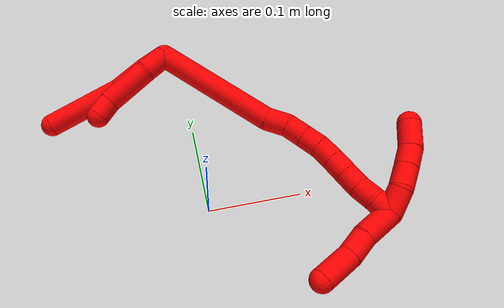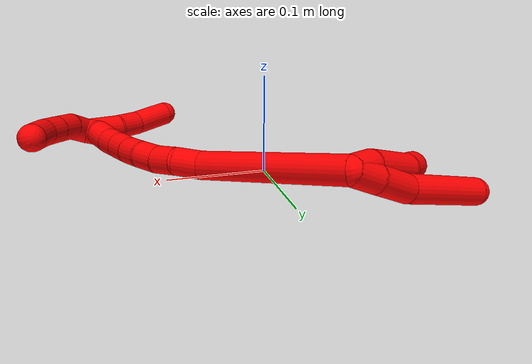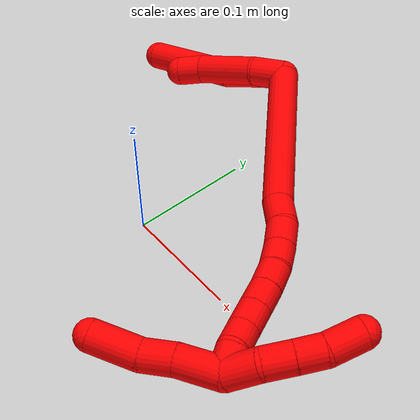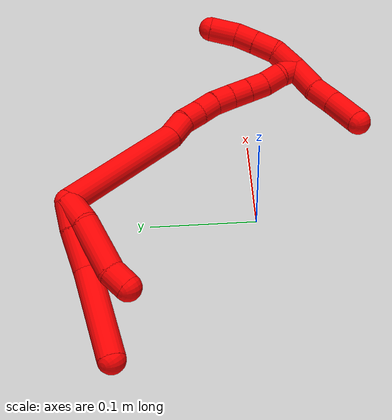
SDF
<sdf version="1.7">
 <world name="default">
  <model name="2">
   <static>0</static>
   <link name="2">
    <collision name="collision-cylinder-e_1_2_8">
     <pose>-0.007371 -0.009193 0.005925 0.998279 -0.59305 -0.330113</pose>
     <geometry><cylinder><radius>0.0125</radius><length>0.026378</length></cylinder></geometry>
     <surface>
      <friction><ode><mu>1.16</mu><mu2>1.16</mu2><slip1>0</slip1><slip2>0</slip2></ode></friction>
      <contact><ode><kp>1e+06</kp><kd>1</kd><max_vel>0</max_vel><min_depth>0.001</min_depth></ode></contact>
     </surface>
    </collision>
    <visual name="visual-cylinder-e_1_2_8">
     <pose>-0.007371 -0.009193 0.005925 0.998279 -0.59305 -0.330113</pose>
     <geometry><cylinder><radius>0.0125</radius><length>0.026378</length></cylinder></geometry>
     <material><ambient>1 0 0 1</ambient></material>
    </visual>
    <collision name="collision-cylinder-e_2_8_9">
     <pose>-0.025148 -0.033207 0.018988 1.12201 -0.56398 -0.360135</pose>
     <geometry><cylinder><radius>0.0125</radius><length>0.03893</length></cylinder></geometry>
     <surface>
      <friction><ode><mu>1.16</mu><mu2>1.16</mu2><slip1>0</slip1><slip2>0</slip2></ode></friction>
      <contact><ode><kp>1e+06</kp><kd>1</kd><max_vel>0</max_vel><min_depth>0.001</min_depth></ode></contact>
     </surface>
    </collision>
    <visual name="visual-cylinder-e_2_8_9">
     <pose>-0.025148 -0.033207 0.018988 1.12201 -0.56398 -0.360135</pose>
     <geometry><cylinder><radius>0.0125</radius><length>0.03893</length></cylinder></geometry>
     <material><ambient>1 0 0 1</ambient></material>
    </visual>
    <collision name="collision-cylinder-e_3_9_6">
     <pose>-0.0516 -0.080749 0.04769 0.988069 -0.388679 -0.211222</pose>
     <geometry><cylinder><radius>0.0125</radius><length>0.084692</length></cylinder></geometry>
     <surface>
      <friction><ode><mu>1.16</mu><mu2>1.16</mu2><slip1>0</slip1><slip2>0</slip2></ode></friction>
      <contact><ode><kp>1e+06</kp><kd>1</kd><max_vel>0</max_vel><min_depth>0.001</min_depth></ode></contact>
     </surface>
    </collision>
    <visual name="visual-cylinder-e_3_9_6">
     <pose>-0.0516 -0.080749 0.04769 0.988069 -0.388679 -0.211222</pose>
     <geometry><cylinder><radius>0.0125</radius><length>0.084692</length></cylinder></geometry>
     <material><ambient>1 0 0 1</ambient></material>
    </visual>
    <collision name="collision-cylinder-e_1_2_10">
     <pose>-0.00237 -0.013021 0.004144 1.26267 -0.171731 -0.125707</pose>
     <geometry><cylinder><radius>0.0125</radius><length>0.027737</length></cylinder></geometry>
     <surface>
      <friction><ode><mu>1.16</mu><mu2>1.16</mu2><slip1>0</slip1><slip2>0</slip2></ode></friction>
      <contact><ode><kp>1e+06</kp><kd>1</kd><max_vel>0</max_vel><min_depth>0.001</min_depth></ode></contact>
     </surface>
    </collision>
    <visual name="visual-cylinder-e_1_2_10">
     <pose>-0.00237 -0.013021 0.004144 1.26267 -0.171731 -0.125707</pose>
     <geometry><cylinder><radius>0.0125</radius><length>0.027737</length></cylinder></geometry>
     <material><ambient>1 0 0 1</ambient></material>
    </visual>
    <collision name="collision-cylinder-e_2_10_11">
     <pose>-0.014678 -0.048493 0.01625 1.22998 -0.395246 -0.281018</pose>
     <geometry><cylinder><radius>0.0125</radius><length>0.051622</length></cylinder></geometry>
     <surface>
      <friction><ode><mu>1.16</mu><mu2>1.16</mu2><slip1>0</slip1><slip2>0</slip2></ode></friction>
      <contact><ode><kp>1e+06</kp><kd>1</kd><max_vel>0</max_vel><min_depth>0.001</min_depth></ode></contact>
     </surface>
    </collision>
    <visual name="visual-cylinder-e_2_10_11">
     <pose>-0.014678 -0.048493 0.01625 1.22998 -0.395246 -0.281018</pose>
     <geometry><cylinder><radius>0.0125</radius><length>0.051622</length></cylinder></geometry>
     <material><ambient>1 0 0 1</ambient></material>
    </visual>
    <collision name="collision-cylinder-e_3_11_5">
     <pose>-0.026954 -0.080965 0.024994 1.49303 -0.228502 -0.211522</pose>
     <geometry><cylinder><radius>0.0125</radius><length>0.020641</length></cylinder></geometry>
     <surface>
      <friction><ode><mu>1.16</mu><mu2>1.16</mu2><slip1>0</slip1><slip2>0</slip2></ode></friction>
      <contact><ode><kp>1e+06</kp><kd>1</kd><max_vel>0</max_vel><min_depth>0.001</min_depth></ode></contact>
     </surface>
    </collision>
    <visual name="visual-cylinder-e_3_11_5">
     <pose>-0.026954 -0.080965 0.024994 1.49303 -0.228502 -0.211522</pose>
     <geometry><cylinder><radius>0.0125</radius><length>0.020641</length></cylinder></geometry>
     <material><ambient>1 0 0 1</ambient></material>
    </visual>
    <collision name="collision-cylinder-e_1_2_12">
     <pose>0.010336 -0.006383 -0.066286 3.0456 0.153984 2.02779</pose>
     <geometry><cylinder><radius>0.0125</radius><length>0.134779</length></cylinder></geometry>
     <surface>
      <friction><ode><mu>1.16</mu><mu2>1.16</mu2><slip1>0</slip1><slip2>0</slip2></ode></friction>
      <contact><ode><kp>1e+06</kp><kd>1</kd><max_vel>0</max_vel><min_depth>0.001</min_depth></ode></contact>
     </surface>
    </collision>
    <visual name="visual-cylinder-e_1_2_12">
     <pose>0.010336 -0.006383 -0.066286 3.0456 0.153984 2.02779</pose>
     <geometry><cylinder><radius>0.0125</radius><length>0.134779</length></cylinder></geometry>
     <material><ambient>1 0 0 1</ambient></material>
    </visual>
    <collision name="collision-cylinder-e_2_12_13">
     <pose>0.024615 -0.011791 -0.143811 -3.05511 0.336269 -2.64238</pose>
     <geometry><cylinder><radius>0.0125</radius><length>0.023902</length></cylinder></geometry>
     <surface>
      <friction><ode><mu>1.16</mu><mu2>1.16</mu2><slip1>0</slip1><slip2>0</slip2></ode></friction>
      <contact><ode><kp>1e+06</kp><kd>1</kd><max_vel>0</max_vel><min_depth>0.001</min_depth></ode></contact>
     </surface>
    </collision>
    <visual name="visual-cylinder-e_2_12_13">
     <pose>0.024615 -0.011791 -0.143811 -3.05511 0.336269 -2.64238</pose>
     <geometry><cylinder><radius>0.0125</radius><length>0.023902</length></cylinder></geometry>
     <material><ambient>1 0 0 1</ambient></material>
    </visual>
    <collision name="collision-cylinder-e_3_13_14">
     <pose>0.030467 -0.01248 -0.165202 2.97914 0.183353 1.69216</pose>
     <geometry><cylinder><radius>0.0125</radius><length>0.020924</length></cylinder></geometry>
     <surface>
      <friction><ode><mu>1.16</mu><mu2>1.16</mu2><slip1>0</slip1><slip2>0</slip2></ode></friction>
      <contact><ode><kp>1e+06</kp><kd>1</kd><max_vel>0</max_vel><min_depth>0.001</min_depth></ode></contact>
     </surface>
    </collision>
    <visual name="visual-cylinder-e_3_13_14">
     <pose>0.030467 -0.01248 -0.165202 2.97914 0.183353 1.69216</pose>
     <geometry><cylinder><radius>0.0125</radius><length>0.020924</length></cylinder></geometry>
     <material><ambient>1 0 0 1</ambient></material>
    </visual>
    <collision name="collision-cylinder-e_4_14_15">
     <pose>0.035507 -0.016495 -0.184752 2.89644 0.312804 1.81519</pose>
     <geometry><cylinder><radius>0.0125</radius><length>0.020364</length></cylinder></geometry>
     <surface>
      <friction><ode><mu>1.16</mu><mu2>1.16</mu2><slip1>0</slip1><slip2>0</slip2></ode></friction>
      <contact><ode><kp>1e+06</kp><kd>1</kd><max_vel>0</max_vel><min_depth>0.001</min_depth></ode></contact>
     </surface>
    </collision>
    <visual name="visual-cylinder-e_4_14_15">
     <pose>0.035507 -0.016495 -0.184752 2.89644 0.312804 1.81519</pose>
     <geometry><cylinder><radius>0.0125</radius><length>0.020364</length></cylinder></geometry>
     <material><ambient>1 0 0 1</ambient></material>
    </visual>
    <collision name="collision-cylinder-e_5_15_16">
     <pose>0.040977 -0.022748 -0.203059 2.72878 0.235785 1.02956</pose>
     <geometry><cylinder><radius>0.0125</radius><length>0.020006</length></cylinder></geometry>
     <surface>
      <friction><ode><mu>1.16</mu><mu2>1.16</mu2><slip1>0</slip1><slip2>0</slip2></ode></friction>
      <contact><ode><kp>1e+06</kp><kd>1</kd><max_vel>0</max_vel><min_depth>0.001</min_depth></ode></contact>
     </surface>
    </collision>
    <visual name="visual-cylinder-e_5_15_16">
     <pose>0.040977 -0.022748 -0.203059 2.72878 0.235785 1.02956</pose>
     <geometry><cylinder><radius>0.0125</radius><length>0.020006</length></cylinder></geometry>
     <material><ambient>1 0 0 1</ambient></material>
    </visual>
    <collision name="collision-cylinder-e_6_16_17">
     <pose>0.045943 -0.031157 -0.220508 2.65599 0.265809 0.989899</pose>
     <geometry><cylinder><radius>0.0125</radius><length>0.020016</length></cylinder></geometry>
     <surface>
      <friction><ode><mu>1.16</mu><mu2>1.16</mu2><slip1>0</slip1><slip2>0</slip2></ode></friction>
      <contact><ode><kp>1e+06</kp><kd>1</kd><max_vel>0</max_vel><min_depth>0.001</min_depth></ode></contact>
     </surface>
    </collision>
    <visual name="visual-cylinder-e_6_16_17">
     <pose>0.045943 -0.031157 -0.220508 2.65599 0.265809 0.989899</pose>
     <geometry><cylinder><radius>0.0125</radius><length>0.020016</length></cylinder></geometry>
     <material><ambient>1 0 0 1</ambient></material>
    </visual>
    <collision name="collision-cylinder-e_7_17_18">
     <pose>0.051219 -0.040141 -0.23759 2.65892 0.267856 1.00169</pose>
     <geometry><cylinder><radius>0.0125</radius><length>0.020001</length></cylinder></geometry>
     <surface>
      <friction><ode><mu>1.16</mu><mu2>1.16</mu2><slip1>0</slip1><slip2>0</slip2></ode></friction>
      <contact><ode><kp>1e+06</kp><kd>1</kd><max_vel>0</max_vel><min_depth>0.001</min_depth></ode></contact>
     </surface>
    </collision>
    <visual name="visual-cylinder-e_7_17_18">
     <pose>0.051219 -0.040141 -0.23759 2.65892 0.267856 1.00169</pose>
     <geometry><cylinder><radius>0.0125</radius><length>0.020001</length></cylinder></geometry>
     <material><ambient>1 0 0 1</ambient></material>
    </visual>
    <collision name="collision-cylinder-e_8_18_19">
     <pose>0.058302 -0.048466 -0.25423 2.69784 0.45946 1.60678</pose>
     <geometry><cylinder><radius>0.0125</radius><length>0.020006</length></cylinder></geometry>
     <surface>
      <friction><ode><mu>1.16</mu><mu2>1.16</mu2><slip1>0</slip1><slip2>0</slip2></ode></friction>
      <contact><ode><kp>1e+06</kp><kd>1</kd><max_vel>0</max_vel><min_depth>0.001</min_depth></ode></contact>
     </surface>
    </collision>
    <visual name="visual-cylinder-e_8_18_19">
     <pose>0.058302 -0.048466 -0.25423 2.69784 0.45946 1.60678</pose>
     <geometry><cylinder><radius>0.0125</radius><length>0.020006</length></cylinder></geometry>
     <material><ambient>1 0 0 1</ambient></material>
    </visual>
    <collision name="collision-cylinder-e_9_19_1">
     <pose>0.064502 -0.055469 -0.271652 2.81554 0.177347 0.991058</pose>
     <geometry><cylinder><radius>0.0125</radius><length>0.020001</length></cylinder></geometry>
     <surface>
      <friction><ode><mu>1.16</mu><mu2>1.16</mu2><slip1>0</slip1><slip2>0</slip2></ode></friction>
      <contact><ode><kp>1e+06</kp><kd>1</kd><max_vel>0</max_vel><min_depth>0.001</min_depth></ode></contact>
     </surface>
    </collision>
    <visual name="visual-cylinder-e_9_19_1">
     <pose>0.064502 -0.055469 -0.271652 2.81554 0.177347 0.991058</pose>
     <geometry><cylinder><radius>0.0125</radius><length>0.020001</length></cylinder></geometry>
     <material><ambient>1 0 0 1</ambient></material>
    </visual>
    <collision name="collision-cylinder-e_1_1_20">
     <pose>0.071714 -0.046292 -0.279406 -1.44401 0.413095 -0.364938</pose>
     <geometry><cylinder><radius>0.0125</radius><length>0.027141</length></cylinder></geometry>
     <surface>
      <friction><ode><mu>1.16</mu><mu2>1.16</mu2><slip1>0</slip1><slip2>0</slip2></ode></friction>
      <contact><ode><kp>1e+06</kp><kd>1</kd><max_vel>0</max_vel><min_depth>0.001</min_depth></ode></contact>
     </surface>
    </collision>
    <visual name="visual-cylinder-e_1_1_20">
     <pose>0.071714 -0.046292 -0.279406 -1.44401 0.413095 -0.364938</pose>
     <geometry><cylinder><radius>0.0125</radius><length>0.027141</length></cylinder></geometry>
     <material><ambient>1 0 0 1</ambient></material>
    </visual>
    <collision name="collision-cylinder-e_2_20_21">
     <pose>0.078225 -0.022432 -0.276006 -1.41359 0.090804 -0.077558</pose>
     <geometry><cylinder><radius>0.0125</radius><length>0.023448</length></cylinder></geometry>
     <surface>
      <friction><ode><mu>1.16</mu><mu2>1.16</mu2><slip1>0</slip1><slip2>0</slip2></ode></friction>
      <contact><ode><kp>1e+06</kp><kd>1</kd><max_vel>0</max_vel><min_depth>0.001</min_depth></ode></contact>
     </surface>
    </collision>
    <visual name="visual-cylinder-e_2_20_21">
     <pose>0.078225 -0.022432 -0.276006 -1.41359 0.090804 -0.077558</pose>
     <geometry><cylinder><radius>0.0125</radius><length>0.023448</length></cylinder></geometry>
     <material><ambient>1 0 0 1</ambient></material>
    </visual>
    <collision name="collision-cylinder-e_3_21_22">
     <pose>0.080091 -0.000442 -0.272277 -1.39095 0.075399 -0.062936</pose>
     <geometry><cylinder><radius>0.0125</radius><length>0.021318</length></cylinder></geometry>
     <surface>
      <friction><ode><mu>1.16</mu><mu2>1.16</mu2><slip1>0</slip1><slip2>0</slip2></ode></friction>
      <contact><ode><kp>1e+06</kp><kd>1</kd><max_vel>0</max_vel><min_depth>0.001</min_depth></ode></contact>
     </surface>
    </collision>
    <visual name="visual-cylinder-e_3_21_22">
     <pose>0.080091 -0.000442 -0.272277 -1.39095 0.075399 -0.062936</pose>
     <geometry><cylinder><radius>0.0125</radius><length>0.021318</length></cylinder></geometry>
     <material><ambient>1 0 0 1</ambient></material>
    </visual>
    <collision name="collision-cylinder-e_4_22_4">
     <pose>0.080944 0.022866 -0.264705 -1.1552 0.003583 -0.002335</pose>
     <geometry><cylinder><radius>0.0125</radius><length>0.028093</length></cylinder></geometry>
     <surface>
      <friction><ode><mu>1.16</mu><mu2>1.16</mu2><slip1>0</slip1><slip2>0</slip2></ode></friction>
      <contact><ode><kp>1e+06</kp><kd>1</kd><max_vel>0</max_vel><min_depth>0.001</min_depth></ode></contact>
     </surface>
    </collision>
    <visual name="visual-cylinder-e_4_22_4">
     <pose>0.080944 0.022866 -0.264705 -1.1552 0.003583 -0.002335</pose>
     <geometry><cylinder><radius>0.0125</radius><length>0.028093</length></cylinder></geometry>
     <material><ambient>1 0 0 1</ambient></material>
    </visual>
    <collision name="collision-cylinder-e_1_1_23">
     <pose>0.063103 -0.075021 -0.27458 1.19884 -0.177777 -0.121643</pose>
     <geometry><cylinder><radius>0.0125</radius><length>0.03577</length></cylinder></geometry>
     <surface>
      <friction><ode><mu>1.16</mu><mu2>1.16</mu2><slip1>0</slip1><slip2>0</slip2></ode></friction>
      <contact><ode><kp>1e+06</kp><kd>1</kd><max_vel>0</max_vel><min_depth>0.001</min_depth></ode></contact>
     </surface>
    </collision>
    <visual name="visual-cylinder-e_1_1_23">
     <pose>0.063103 -0.075021 -0.27458 1.19884 -0.177777 -0.121643</pose>
     <geometry><cylinder><radius>0.0125</radius><length>0.03577</length></cylinder></geometry>
     <material><ambient>1 0 0 1</ambient></material>
    </visual>
    <collision name="collision-cylinder-e_2_23_24">
     <pose>0.05854 -0.103906 -0.265675 1.3726 -0.109536 -0.089755</pose>
     <geometry><cylinder><radius>0.0125</radius><length>0.025623</length></cylinder></geometry>
     <surface>
      <friction><ode><mu>1.16</mu><mu2>1.16</mu2><slip1>0</slip1><slip2>0</slip2></ode></friction>
      <contact><ode><kp>1e+06</kp><kd>1</kd><max_vel>0</max_vel><min_depth>0.001</min_depth></ode></contact>
     </surface>
    </collision>
    <visual name="visual-cylinder-e_2_23_24">
     <pose>0.05854 -0.103906 -0.265675 1.3726 -0.109536 -0.089755</pose>
     <geometry><cylinder><radius>0.0125</radius><length>0.025623</length></cylinder></geometry>
     <material><ambient>1 0 0 1</ambient></material>
    </visual>
    <collision name="collision-cylinder-e_3_24_3">
     <pose>0.05701 -0.134155 -0.255614 1.16875 -0.00672 -0.004445</pose>
     <geometry><cylinder><radius>0.0125</radius><length>0.038607</length></cylinder></geometry>
     <surface>
      <friction><ode><mu>1.16</mu><mu2>1.16</mu2><slip1>0</slip1><slip2>0</slip2></ode></friction>
      <contact><ode><kp>1e+06</kp><kd>1</kd><max_vel>0</max_vel><min_depth>0.001</min_depth></ode></contact>
     </surface>
    </collision>
    <visual name="visual-cylinder-e_3_24_3">
     <pose>0.05701 -0.134155 -0.255614 1.16875 -0.00672 -0.004445</pose>
     <geometry><cylinder><radius>0.0125</radius><length>0.038607</length></cylinder></geometry>
     <material><ambient>1 0 0 1</ambient></material>
    </visual>
    <collision name="collision-sphere-3">
     <pose>0.05688 -0.151919 -0.24806 0 -0 0</pose>
     <geometry><sphere><radius>0.0125</radius></sphere></geometry>
     <surface>
      <friction><ode><mu>1.16</mu><mu2>1.16</mu2><slip1>0</slip1><slip2>0</slip2></ode></friction>
      <contact><ode><kp>1e+06</kp><kd>1</kd><max_vel>0</max_vel><min_depth>0.001</min_depth></ode></contact>
     </surface>
    </collision>
    <visual name="visual-sphere-3">
     <pose>0.05688 -0.151919 -0.24806 0 -0 0</pose>
     <geometry><sphere><radius>0.0125</radius></sphere></geometry>
     <material><ambient>1 0 0 1</ambient></material>
    </visual>
    <collision name="collision-sphere-24">
     <pose>0.05714 -0.116391 -0.263167 0 -0 0</pose>
     <geometry><sphere><radius>0.0125</radius></sphere></geometry>
     <surface>
      <friction><ode><mu>1.16</mu><mu2>1.16</mu2><slip1>0</slip1><slip2>0</slip2></ode></friction>
      <contact><ode><kp>1e+06</kp><kd>1</kd><max_vel>0</max_vel><min_depth>0.001</min_depth></ode></contact>
     </surface>
    </collision>
    <visual name="visual-sphere-24">
     <pose>0.05714 -0.116391 -0.263167 0 -0 0</pose>
     <geometry><sphere><radius>0.0125</radius></sphere></geometry>
     <material><ambient>1 0 0 1</ambient></material>
    </visual>
    <collision name="collision-sphere-23">
     <pose>0.059941 -0.09142 -0.268182 0 -0 0</pose>
     <geometry><sphere><radius>0.0125</radius></sphere></geometry>
     <surface>
      <friction><ode><mu>1.16</mu><mu2>1.16</mu2><slip1>0</slip1><slip2>0</slip2></ode></friction>
      <contact><ode><kp>1e+06</kp><kd>1</kd><max_vel>0</max_vel><min_depth>0.001</min_depth></ode></contact>
     </surface>
    </collision>
    <visual name="visual-sphere-23">
     <pose>0.059941 -0.09142 -0.268182 0 -0 0</pose>
     <geometry><sphere><radius>0.0125</radius></sphere></geometry>
     <material><ambient>1 0 0 1</ambient></material>
    </visual>
    <collision name="collision-sphere-4">
     <pose>0.080995 0.035716 -0.259034 0 -0 0</pose>
     <geometry><sphere><radius>0.0125</radius></sphere></geometry>
     <surface>
      <friction><ode><mu>1.16</mu><mu2>1.16</mu2><slip1>0</slip1><slip2>0</slip2></ode></friction>
      <contact><ode><kp>1e+06</kp><kd>1</kd><max_vel>0</max_vel><min_depth>0.001</min_depth></ode></contact>
     </surface>
    </collision>
    <visual name="visual-sphere-4">
     <pose>0.080995 0.035716 -0.259034 0 -0 0</pose>
     <geometry><sphere><radius>0.0125</radius></sphere></geometry>
     <material><ambient>1 0 0 1</ambient></material>
    </visual>
    <collision name="collision-sphere-22">
     <pose>0.080894 0.010015 -0.270376 0 -0 0</pose>
     <geometry><sphere><radius>0.0125</radius></sphere></geometry>
     <surface>
      <friction><ode><mu>1.16</mu><mu2>1.16</mu2><slip1>0</slip1><slip2>0</slip2></ode></friction>
      <contact><ode><kp>1e+06</kp><kd>1</kd><max_vel>0</max_vel><min_depth>0.001</min_depth></ode></contact>
     </surface>
    </collision>
    <visual name="visual-sphere-22">
     <pose>0.080894 0.010015 -0.270376 0 -0 0</pose>
     <geometry><sphere><radius>0.0125</radius></sphere></geometry>
     <material><ambient>1 0 0 1</ambient></material>
    </visual>
    <collision name="collision-sphere-21">
     <pose>0.079288 -0.0109 -0.274178 0 -0 0</pose>
     <geometry><sphere><radius>0.0125</radius></sphere></geometry>
     <surface>
      <friction><ode><mu>1.16</mu><mu2>1.16</mu2><slip1>0</slip1><slip2>0</slip2></ode></friction>
      <contact><ode><kp>1e+06</kp><kd>1</kd><max_vel>0</max_vel><min_depth>0.001</min_depth></ode></contact>
     </surface>
    </collision>
    <visual name="visual-sphere-21">
     <pose>0.079288 -0.0109 -0.274178 0 -0 0</pose>
     <geometry><sphere><radius>0.0125</radius></sphere></geometry>
     <material><ambient>1 0 0 1</ambient></material>
    </visual>
    <collision name="collision-sphere-20">
     <pose>0.077162 -0.033963 -0.277834 0 -0 0</pose>
     <geometry><sphere><radius>0.0125</radius></sphere></geometry>
     <surface>
      <friction><ode><mu>1.16</mu><mu2>1.16</mu2><slip1>0</slip1><slip2>0</slip2></ode></friction>
      <contact><ode><kp>1e+06</kp><kd>1</kd><max_vel>0</max_vel><min_depth>0.001</min_depth></ode></contact>
     </surface>
    </collision>
    <visual name="visual-sphere-20">
     <pose>0.077162 -0.033963 -0.277834 0 -0 0</pose>
     <geometry><sphere><radius>0.0125</radius></sphere></geometry>
     <material><ambient>1 0 0 1</ambient></material>
    </visual>
    <collision name="collision-sphere-11">
     <pose>-0.024616 -0.070943 0.024213 0 -0 0</pose>
     <geometry><sphere><radius>0.0125</radius></sphere></geometry>
     <surface>
      <friction><ode><mu>1.16</mu><mu2>1.16</mu2><slip1>0</slip1><slip2>0</slip2></ode></friction>
      <contact><ode><kp>1e+06</kp><kd>1</kd><max_vel>0</max_vel><min_depth>0.001</min_depth></ode></contact>
     </surface>
    </collision>
    <visual name="visual-sphere-11">
     <pose>-0.024616 -0.070943 0.024213 0 -0 0</pose>
     <geometry><sphere><radius>0.0125</radius></sphere></geometry>
     <material><ambient>1 0 0 1</ambient></material>
    </visual>
    <collision name="collision-sphere-10">
     <pose>-0.00474 -0.026042 0.008288 0 -0 0</pose>
     <geometry><sphere><radius>0.0125</radius></sphere></geometry>
     <surface>
      <friction><ode><mu>1.16</mu><mu2>1.16</mu2><slip1>0</slip1><slip2>0</slip2></ode></friction>
      <contact><ode><kp>1e+06</kp><kd>1</kd><max_vel>0</max_vel><min_depth>0.001</min_depth></ode></contact>
     </surface>
    </collision>
    <visual name="visual-sphere-10">
     <pose>-0.00474 -0.026042 0.008288 0 -0 0</pose>
     <geometry><sphere><radius>0.0125</radius></sphere></geometry>
     <material><ambient>1 0 0 1</ambient></material>
    </visual>
    <collision name="collision-sphere-6">
     <pose>-0.067648 -0.113469 0.069255 0 -0 0</pose>
     <geometry><sphere><radius>0.0125</radius></sphere></geometry>
     <surface>
      <friction><ode><mu>1.16</mu><mu2>1.16</mu2><slip1>0</slip1><slip2>0</slip2></ode></friction>
      <contact><ode><kp>1e+06</kp><kd>1</kd><max_vel>0</max_vel><min_depth>0.001</min_depth></ode></contact>
     </surface>
    </collision>
    <visual name="visual-sphere-6">
     <pose>-0.067648 -0.113469 0.069255 0 -0 0</pose>
     <geometry><sphere><radius>0.0125</radius></sphere></geometry>
     <material><ambient>1 0 0 1</ambient></material>
    </visual>
    <collision name="collision-sphere-9">
     <pose>-0.035553 -0.048029 0.026125 0 -0 0</pose>
     <geometry><sphere><radius>0.0125</radius></sphere></geometry>
     <surface>
      <friction><ode><mu>1.16</mu><mu2>1.16</mu2><slip1>0</slip1><slip2>0</slip2></ode></friction>
      <contact><ode><kp>1e+06</kp><kd>1</kd><max_vel>0</max_vel><min_depth>0.001</min_depth></ode></contact>
     </surface>
    </collision>
    <visual name="visual-sphere-9">
     <pose>-0.035553 -0.048029 0.026125 0 -0 0</pose>
     <geometry><sphere><radius>0.0125</radius></sphere></geometry>
     <material><ambient>1 0 0 1</ambient></material>
    </visual>
    <collision name="collision-sphere-2">
     <geometry><sphere><radius>0.0125</radius></sphere></geometry>
     <surface>
      <friction><ode><mu>1.16</mu><mu2>1.16</mu2><slip1>0</slip1><slip2>0</slip2></ode></friction>
      <contact><ode><kp>1e+06</kp><kd>1</kd><max_vel>0</max_vel><min_depth>0.001</min_depth></ode></contact>
     </surface>
    </collision>
    <visual name="visual-sphere-2">
     <geometry><sphere><radius>0.0125</radius></sphere></geometry>
     <material><ambient>1 0 0 1</ambient></material>
    </visual>
    <collision name="collision-sphere-19">
     <pose>0.062738 -0.052316 -0.262327 0 -0 0</pose>
     <geometry><sphere><radius>0.0125</radius></sphere></geometry>
     <surface>
      <friction><ode><mu>1.16</mu><mu2>1.16</mu2><slip1>0</slip1><slip2>0</slip2></ode></friction>
      <contact><ode><kp>1e+06</kp><kd>1</kd><max_vel>0</max_vel><min_depth>0.001</min_depth></ode></contact>
     </surface>
    </collision>
    <visual name="visual-sphere-19">
     <pose>0.062738 -0.052316 -0.262327 0 -0 0</pose>
     <geometry><sphere><radius>0.0125</radius></sphere></geometry>
     <material><ambient>1 0 0 1</ambient></material>
    </visual>
    <collision name="collision-sphere-8">
     <pose>-0.014742 -0.018386 0.01185 0 -0 0</pose>
     <geometry><sphere><radius>0.0125</radius></sphere></geometry>
     <surface>
      <friction><ode><mu>1.16</mu><mu2>1.16</mu2><slip1>0</slip1><slip2>0</slip2></ode></friction>
      <contact><ode><kp>1e+06</kp><kd>1</kd><max_vel>0</max_vel><min_depth>0.001</min_depth></ode></contact>
     </surface>
    </collision>
    <visual name="visual-sphere-8">
     <pose>-0.014742 -0.018386 0.01185 0 -0 0</pose>
     <geometry><sphere><radius>0.0125</radius></sphere></geometry>
     <material><ambient>1 0 0 1</ambient></material>
    </visual>
    <collision name="collision-sphere-5">
     <pose>-0.029292 -0.090987 0.025775 0 -0 0</pose>
     <geometry><sphere><radius>0.0125</radius></sphere></geometry>
     <surface>
      <friction><ode><mu>1.16</mu><mu2>1.16</mu2><slip1>0</slip1><slip2>0</slip2></ode></friction>
      <contact><ode><kp>1e+06</kp><kd>1</kd><max_vel>0</max_vel><min_depth>0.001</min_depth></ode></contact>
     </surface>
    </collision>
    <visual name="visual-sphere-5">
     <pose>-0.029292 -0.090987 0.025775 0 -0 0</pose>
     <geometry><sphere><radius>0.0125</radius></sphere></geometry>
     <material><ambient>1 0 0 1</ambient></material>
    </visual>
    <collision name="collision-sphere-12">
     <pose>0.020672 -0.012765 -0.132571 0 -0 0</pose>
     <geometry><sphere><radius>0.0125</radius></sphere></geometry>
     <surface>
      <friction><ode><mu>1.16</mu><mu2>1.16</mu2><slip1>0</slip1><slip2>0</slip2></ode></friction>
      <contact><ode><kp>1e+06</kp><kd>1</kd><max_vel>0</max_vel><min_depth>0.001</min_depth></ode></contact>
     </surface>
    </collision>
    <visual name="visual-sphere-12">
     <pose>0.020672 -0.012765 -0.132571 0 -0 0</pose>
     <geometry><sphere><radius>0.0125</radius></sphere></geometry>
     <material><ambient>1 0 0 1</ambient></material>
    </visual>
    <collision name="collision-sphere-13">
     <pose>0.028559 -0.010816 -0.155051 0 -0 0</pose>
     <geometry><sphere><radius>0.0125</radius></sphere></geometry>
     <surface>
      <friction><ode><mu>1.16</mu><mu2>1.16</mu2><slip1>0</slip1><slip2>0</slip2></ode></friction>
      <contact><ode><kp>1e+06</kp><kd>1</kd><max_vel>0</max_vel><min_depth>0.001</min_depth></ode></contact>
     </surface>
    </collision>
    <visual name="visual-sphere-13">
     <pose>0.028559 -0.010816 -0.155051 0 -0 0</pose>
     <geometry><sphere><radius>0.0125</radius></sphere></geometry>
     <material><ambient>1 0 0 1</ambient></material>
    </visual>
    <collision name="collision-sphere-14">
     <pose>0.032374 -0.014144 -0.175353 0 -0 0</pose>
     <geometry><sphere><radius>0.0125</radius></sphere></geometry>
     <surface>
      <friction><ode><mu>1.16</mu><mu2>1.16</mu2><slip1>0</slip1><slip2>0</slip2></ode></friction>
      <contact><ode><kp>1e+06</kp><kd>1</kd><max_vel>0</max_vel><min_depth>0.001</min_depth></ode></contact>
     </surface>
    </collision>
    <visual name="visual-sphere-14">
     <pose>0.032374 -0.014144 -0.175353 0 -0 0</pose>
     <geometry><sphere><radius>0.0125</radius></sphere></geometry>
     <material><ambient>1 0 0 1</ambient></material>
    </visual>
    <collision name="collision-sphere-15">
     <pose>0.038641 -0.018846 -0.19415 0 -0 0</pose>
     <geometry><sphere><radius>0.0125</radius></sphere></geometry>
     <surface>
      <friction><ode><mu>1.16</mu><mu2>1.16</mu2><slip1>0</slip1><slip2>0</slip2></ode></friction>
      <contact><ode><kp>1e+06</kp><kd>1</kd><max_vel>0</max_vel><min_depth>0.001</min_depth></ode></contact>
     </surface>
    </collision>
    <visual name="visual-sphere-15">
     <pose>0.038641 -0.018846 -0.19415 0 -0 0</pose>
     <geometry><sphere><radius>0.0125</radius></sphere></geometry>
     <material><ambient>1 0 0 1</ambient></material>
    </visual>
    <collision name="collision-sphere-16">
     <pose>0.043314 -0.02665 -0.211968 0 -0 0</pose>
     <geometry><sphere><radius>0.0125</radius></sphere></geometry>
     <surface>
      <friction><ode><mu>1.16</mu><mu2>1.16</mu2><slip1>0</slip1><slip2>0</slip2></ode></friction>
      <contact><ode><kp>1e+06</kp><kd>1</kd><max_vel>0</max_vel><min_depth>0.001</min_depth></ode></contact>
     </surface>
    </collision>
    <visual name="visual-sphere-16">
     <pose>0.043314 -0.02665 -0.211968 0 -0 0</pose>
     <geometry><sphere><radius>0.0125</radius></sphere></geometry>
     <material><ambient>1 0 0 1</ambient></material>
    </visual>
    <collision name="collision-sphere-17">
     <pose>0.048572 -0.035664 -0.229048 0 -0 0</pose>
     <geometry><sphere><radius>0.0125</radius></sphere></geometry>
     <surface>
      <friction><ode><mu>1.16</mu><mu2>1.16</mu2><slip1>0</slip1><slip2>0</slip2></ode></friction>
      <contact><ode><kp>1e+06</kp><kd>1</kd><max_vel>0</max_vel><min_depth>0.001</min_depth></ode></contact>
     </surface>
    </collision>
    <visual name="visual-sphere-17">
     <pose>0.048572 -0.035664 -0.229048 0 -0 0</pose>
     <geometry><sphere><radius>0.0125</radius></sphere></geometry>
     <material><ambient>1 0 0 1</ambient></material>
    </visual>
    <collision name="collision-sphere-18">
     <pose>0.053866 -0.044617 -0.246133 0 -0 0</pose>
     <geometry><sphere><radius>0.0125</radius></sphere></geometry>
     <surface>
      <friction><ode><mu>1.16</mu><mu2>1.16</mu2><slip1>0</slip1><slip2>0</slip2></ode></friction>
      <contact><ode><kp>1e+06</kp><kd>1</kd><max_vel>0</max_vel><min_depth>0.001</min_depth></ode></contact>
     </surface>
    </collision>
    <visual name="visual-sphere-18">
     <pose>0.053866 -0.044617 -0.246133 0 -0 0</pose>
     <geometry><sphere><radius>0.0125</radius></sphere></geometry>
     <material><ambient>1 0 0 1</ambient></material>
    </visual>
    <collision name="collision-sphere-1">
     <pose>0.066266 -0.058622 -0.280977 0 -0 0</pose>
     <geometry><sphere><radius>0.0125</radius></sphere></geometry>
     <surface>
      <friction><ode><mu>1.16</mu><mu2>1.16</mu2><slip1>0</slip1><slip2>0</slip2></ode></friction>
      <contact><ode><kp>1e+06</kp><kd>1</kd><max_vel>0</max_vel><min_depth>0.001</min_depth></ode></contact>
     </surface>
    </collision>
    <visual name="visual-sphere-1">
     <pose>0.066266 -0.058622 -0.280977 0 -0 0</pose>
     <geometry><sphere><radius>0.0125</radius></sphere></geometry>
     <material><ambient>1 0 0 1</ambient></material>
    </visual>
    <inertial>
     <pose>0.020479 -0.040379 -0.12097 0 -0 0</pose>
     <mass>0.75</mass>
     <inertia>
      <ixx>0.000177</ixx>
      <ixy>0</ixy>
      <ixz>0</ixz>
      <iyy>0.000301</iyy>
      <iyz>0</iyz>
      <izz>7.7e-05</izz>
     </inertia>
    </inertial>
   </link>
   <pose>-0.017146 0.169644 0.058166 0.015341 -1.28092 -0.685125</pose>
  </model>
 </world>
</sdf>
